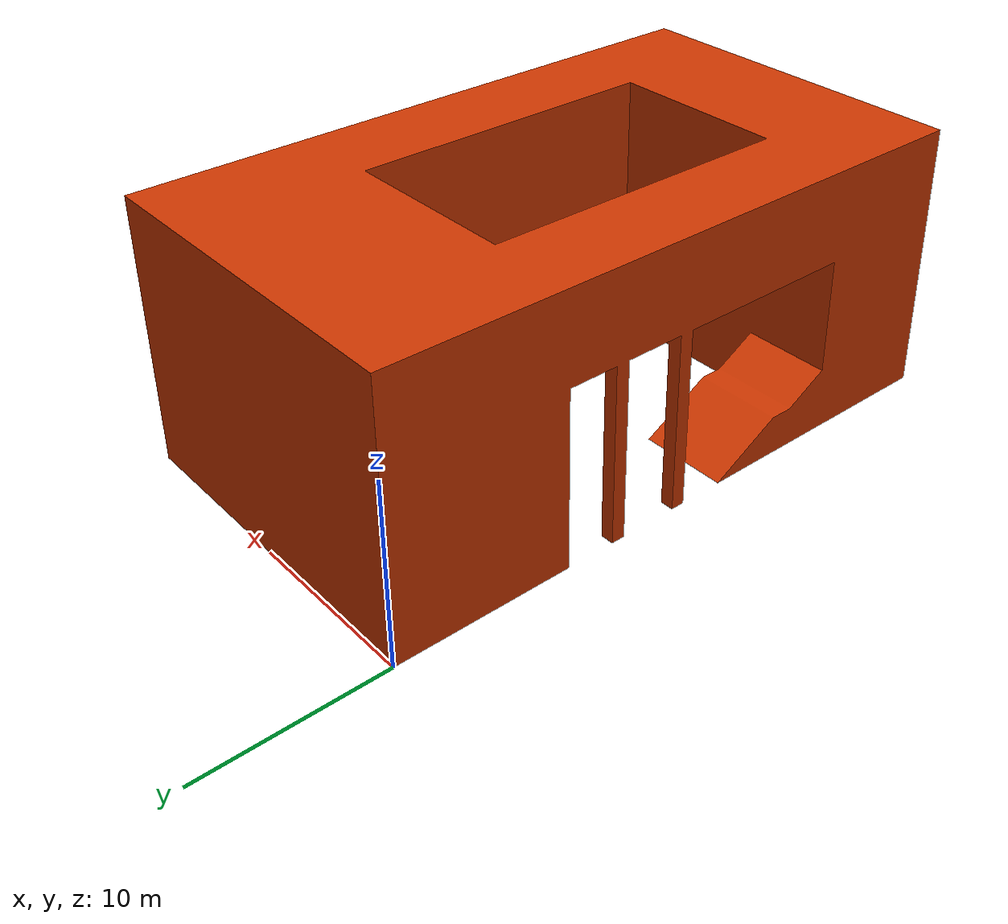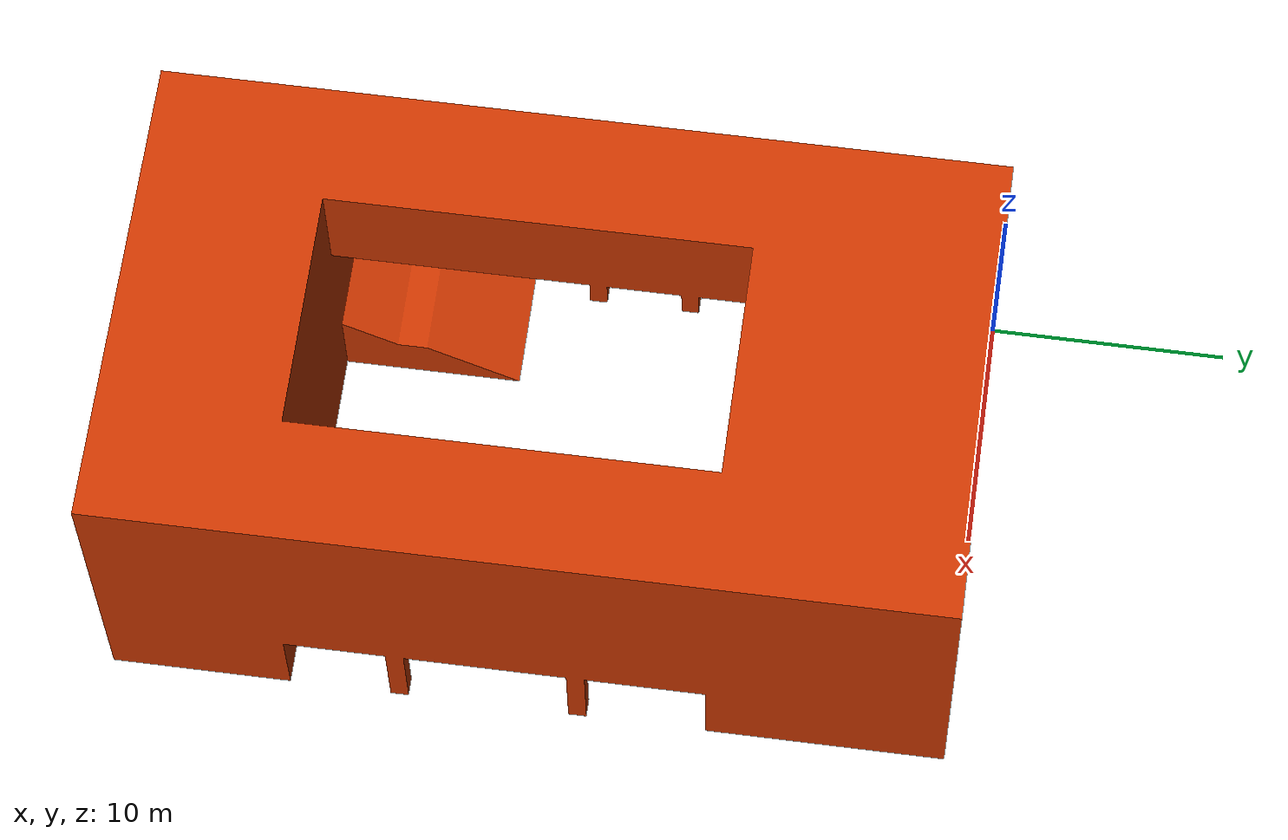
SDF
<?xml version="1.0" ?>
<sdf version="1.5">
  <model name="ISCAS_building">
    <link name="link">
      <collision name="collision">
        <geometry>
          <mesh>
            <uri>model://ISCAS/ISCAS_building/meshes/ISCAS_building.dae</uri>
            <scale>0.5 0.5 0.5</scale>
          </mesh>
        </geometry>
      </collision>
      <visual name="visual">
        <geometry>
          <mesh>
            <uri>model://ISCAS/ISCAS_building/meshes/ISCAS_building.dae</uri>
            <scale>0.5 0.5 0.5</scale>
          </mesh>
        </geometry>
      </visual>
    </link>
  </model>
</sdf>
